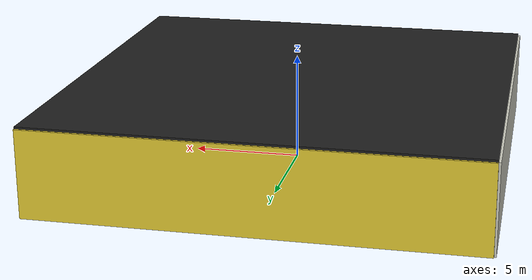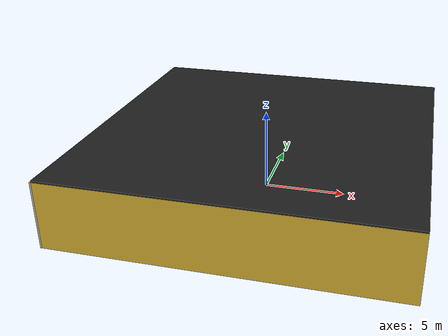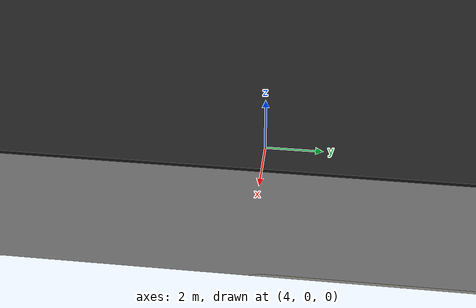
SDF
<sdf version="1.4">
 <world name="default">
  <physics type="ode">
   <max_step_size>0.001</max_step_size>
   <real_time_factor>1</real_time_factor>
   <real_time_update_rate>1000</real_time_update_rate>
   <gravity>0 0 -9.8</gravity>
  </physics>
  <scene><ambient>0.4 0.4 0.4 1</ambient><background>0.7 0.7 0.7 1</background><shadows>1</shadows></scene>
  <model name="Surrounding">
   <static>1</static>
   <link name="Ceiling">
    <collision name="Ceiling_Collision"><geometry><box><size>20 20 0.1</size></box></geometry></collision>
    <visual name="Ceiling_Visual">
     <geometry><box><size>20 20 0.1</size></box></geometry>
     <material>
      <script><uri>file://media/materials/scripts/gazebo.material</uri><name>Gazebo/FlatBlack</name></script>
     </material>
    </visual>
    <pose>0 0 4.05 0 0 0</pose>
   </link>
   <link name="Wall_South">
    <collision name="Wall_South_Collision">
     <geometry><box><size>20 0 4</size></box></geometry>
     <pose>0 0 2 0 -0 0</pose>
    </collision>
    <visual name="Wall_South_Visual">
     <pose>0 0 2 0 -0 0</pose>
     <geometry><box><size>20 0 4</size></box></geometry>
     <material>
      <script><uri>file://media/materials/scripts/gazebo.material</uri><name>Gazebo/Gold</name></script>
     </material>
    </visual>
    <velocity_decay><linear>0</linear><angular>0</angular></velocity_decay>
    <pose>0 -10 0 0 -0 0</pose>
   </link>
   <link name="Wall_East">
    <collision name="Wall_21_Collision">
     <geometry><box><size>20 0 4</size></box></geometry>
     <pose>0 0 2 0 -0 0</pose>
    </collision>
    <visual name="Wall_21_Visual">
     <pose>0 0 2 0 -0 0</pose>
     <geometry><box><size>20 0 4</size></box></geometry>
     <material>
      <script><uri>file://media/materials/scripts/gazebo.material</uri><name>Gazebo/Pioneer2Body</name></script>
     </material>
    </visual>
    <velocity_decay><linear>0</linear><angular>0</angular></velocity_decay>
    <pose>10 0 0 0 -0 1.5708</pose>
   </link>
   <link name="Wall_North">
    <collision name="Wall_22_Collision">
     <geometry><box><size>20 0.2 4</size></box></geometry>
     <pose>0 0 2 0 -0 0</pose>
    </collision>
    <visual name="Wall_22_Visual">
     <pose>0 0 2 0 -0 0</pose>
     <geometry><box><size>20 0.2 4</size></box></geometry>
     <material>
      <script><uri>file://media/materials/scripts/gazebo.material</uri><name>Gazebo/ZincYellow</name></script>
     </material>
    </visual>
    <velocity_decay><linear>0</linear><angular>0</angular></velocity_decay>
    <pose>0 10 0 0 -0 0</pose>
   </link>
   <link name="Wall_West">
    <collision name="Wall_23_Collision">
     <geometry><box><size>20 0.2 4</size></box></geometry>
     <pose>0 0 2 0 -0 0</pose>
    </collision>
    <visual name="Wall_23_Visual">
     <pose>0 0 2 0 -0 0</pose>
     <geometry><box><size>20 0.2 4</size></box></geometry>
     <material>
      <script><uri>file://media/materials/scripts/gazebo.material</uri><name>Gazebo/PaintedWall</name></script>
     </material>
    </visual>
    <velocity_decay><linear>0</linear><angular>0</angular></velocity_decay>
    <pose>-10 0 0 0 0 -1.5708</pose>
   </link>
   <link name="Ground_link">
    <collision name="collision">
     <pose>0 0 .05 0 -0 0</pose>
     <geometry><box><size>20 20 0.1</size></box></geometry>
    </collision>
    <visual name="visual">
     <pose>0 0 .05 0 -0 0</pose>
     <geometry><box><size>20 20 0.1</size></box></geometry>
     <material>
      <script><uri>file://media/materials/scripts/gazebo.material</uri><name>Gazebo/PaintedWall</name></script>
     </material>
    </visual>
   </link>
   <static>1</static>
  </model>
  <spherical_coordinates>
   <surface_model>EARTH_WGS84</surface_model>
   <latitude_deg>0</latitude_deg>
   <longitude_deg>0</longitude_deg>
   <elevation>0</elevation>
   <heading_deg>0</heading_deg>
  </spherical_coordinates>
  <light name="lightball_0" type="diffuse">
   <diffuse>0.8 0.8 0.8 1</diffuse>
   <specular>0.2 0.2 0.2 1</specular>
   <attenuation>
    <range>100</range>
    <constant>0.7</constant>
    <linear>0.01</linear>
    <quadratic>0.001</quadratic>
   </attenuation>
   <direction>-0.5 0.1 -0.9</direction>
   <pose>-0.647604070665 1.56027785651 3.82233891655 0 0 0</pose>
  </light>
  <light name="lightball_1" type="diffuse">
   <diffuse>0.8 0.8 0.8 1</diffuse>
   <specular>0.2 0.2 0.2 1</specular>
   <attenuation>
    <range>100</range>
    <constant>0.7</constant>
    <linear>0.01</linear>
    <quadratic>0.001</quadratic>
   </attenuation>
   <direction>-0.5 0.1 -0.9</direction>
   <pose>8.90774424993 0.694267039288 1.05307599467 0 0 0</pose>
  </light>
  <light name="lightball_2" type="diffuse">
   <diffuse>0.8 0.8 0.8 1</diffuse>
   <specular>0.2 0.2 0.2 1</specular>
   <attenuation>
    <range>100</range>
    <constant>0.7</constant>
    <linear>0.01</linear>
    <quadratic>0.001</quadratic>
   </attenuation>
   <direction>-0.5 0.1 -0.9</direction>
   <pose>4.85280356439 -3.06437646117 2.88612810611 0 0 0</pose>
  </light>
  <light name="lightball_3" type="diffuse">
   <diffuse>0.8 0.8 0.8 1</diffuse>
   <specular>0.2 0.2 0.2 1</specular>
   <attenuation>
    <range>100</range>
    <constant>0.7</constant>
    <linear>0.01</linear>
    <quadratic>0.001</quadratic>
   </attenuation>
   <direction>-0.5 0.1 -0.9</direction>
   <pose>6.72299999671 -3.01734030769 1.65153575649 0 0 0</pose>
  </light>
  <light name="lightball_4" type="diffuse">
   <diffuse>0.8 0.8 0.8 1</diffuse>
   <specular>0.2 0.2 0.2 1</specular>
   <attenuation>
    <range>100</range>
    <constant>0.7</constant>
    <linear>0.01</linear>
    <quadratic>0.001</quadratic>
   </attenuation>
   <direction>-0.5 0.1 -0.9</direction>
   <pose>2.04595689691 -6.41714546232 0.985657168107 0 0 0</pose>
  </light>
  <light name="lightball_5" type="diffuse">
   <diffuse>0.8 0.8 0.8 1</diffuse>
   <specular>0.2 0.2 0.2 1</specular>
   <attenuation>
    <range>100</range>
    <constant>0.7</constant>
    <linear>0.01</linear>
    <quadratic>0.001</quadratic>
   </attenuation>
   <direction>-0.5 0.1 -0.9</direction>
   <pose>-6.07290553213 -8.29825873568 0.963638912781 0 0 0</pose>
  </light>
  <light name="lightball_6" type="diffuse">
   <diffuse>0.8 0.8 0.8 1</diffuse>
   <specular>0.2 0.2 0.2 1</specular>
   <attenuation>
    <range>100</range>
    <constant>0.7</constant>
    <linear>0.01</linear>
    <quadratic>0.001</quadratic>
   </attenuation>
   <direction>-0.5 0.1 -0.9</direction>
   <pose>-2.39876603631 8.05565384059 1.85040833321 0 0 0</pose>
  </light>
  <light name="lightball_7" type="diffuse">
   <diffuse>0.8 0.8 0.8 1</diffuse>
   <specular>0.2 0.2 0.2 1</specular>
   <attenuation>
    <range>100</range>
    <constant>0.7</constant>
    <linear>0.01</linear>
    <quadratic>0.001</quadratic>
   </attenuation>
   <direction>-0.5 0.1 -0.9</direction>
   <pose>0.0496675183959 5.15034111643 1.82035218981 0 0 0</pose>
  </light>
  <include><uri>model://table</uri><pose>-7.82289909982 -0.385164555415 0 0 0 0.911591832984</pose></include>
 </world>
</sdf>

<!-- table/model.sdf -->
<sdf version="1.5">
  <model name="table">
    <static>true</static>
    <link name="link">
      <collision name="surface">
        <pose>0 0 1.0 0 0 0</pose>
        <geometry>
          <box>
            <size>1.5 0.8 0.03</size>
          </box>
        </geometry>
        <surface>
          <friction>
            <ode>
              <mu>0.6</mu>
              <mu2>0.6</mu2>
            </ode>
          </friction>
        </surface>
      </collision>
      <visual name="visual1">
        <pose>0 0 1.0 0 0 0</pose>
        <geometry>
          <box>
            <size>1.5 0.8 0.03</size>
          </box>
        </geometry>
        <material>
          <script>
            <uri>model://media/materials/scripts/gazebo.material</uri>
            <name>Gazebo/Wood</name>
          </script>
        </material>
      </visual>
      <collision name="front_left_leg">
        <pose>0.68 0.38 0.5 0 0 0</pose>
        <geometry>
          <cylinder>
            <radius>0.02</radius>
            <length>1.0</length>
          </cylinder>
        </geometry>
      </collision>
      <visual name="front_left_leg">
        <pose>0.68 0.38 0.5 0 0 0</pose>
        <geometry>
          <cylinder>
            <radius>0.02</radius>
            <length>1.0</length>
          </cylinder>
        </geometry>
        <material>
          <script>
            <uri>model://media/materials/scripts/gazebo.material</uri>
            <name>Gazebo/Grey</name>
          </script>
        </material>
      </visual>
      <collision name="front_right_leg">
        <pose>0.68 -0.38 0.5 0 0 0</pose>
        <geometry>
          <cylinder>
            <radius>0.02</radius>
            <length>1.0</length>
          </cylinder>
        </geometry>
      </collision>
      <visual name="front_right_leg">
        <pose>0.68 -0.38 0.5 0 0 0</pose>
        <geometry>
          <cylinder>
            <radius>0.02</radius>
            <length>1.0</length>
          </cylinder>
        </geometry>
        <material>
          <script>
            <uri>model://media/materials/scripts/gazebo.material</uri>
            <name>Gazebo/Grey</name>
          </script>
        </material>
      </visual>
      <collision name="back_right_leg">
        <pose>-0.68 -0.38 0.5 0 0 0</pose>
        <geometry>
          <cylinder>
            <radius>0.02</radius>
            <length>1.0</length>
          </cylinder>
        </geometry>
      </collision>
      <visual name="back_right_leg">
        <pose>-0.68 -0.38 0.5 0 0 0</pose>
        <geometry>
          <cylinder>
            <radius>0.02</radius>
            <length>1.0</length>
          </cylinder>
        </geometry>
        <material>
          <script>
            <uri>model://media/materials/scripts/gazebo.material</uri>
            <name>Gazebo/Grey</name>
          </script>
        </material>
      </visual>
      <collision name="back_left_leg">
        <pose>-0.68 0.38 0.5 0 0 0</pose>
        <geometry>
          <cylinder>
            <radius>0.02</radius>
            <length>1.0</length>
          </cylinder>
        </geometry>
      </collision>
      <visual name="back_left_leg">
        <pose>-0.68 0.38 0.5 0 0 0</pose>
        <geometry>
          <cylinder>
            <radius>0.02</radius>
            <length>1.0</length>
          </cylinder>
        </geometry>
        <material>
          <script>
            <uri>model://media/materials/scripts/gazebo.material</uri>
            <name>Gazebo/Grey</name>
          </script>
        </material>
      </visual>
    </link>
  </model>
</sdf>
